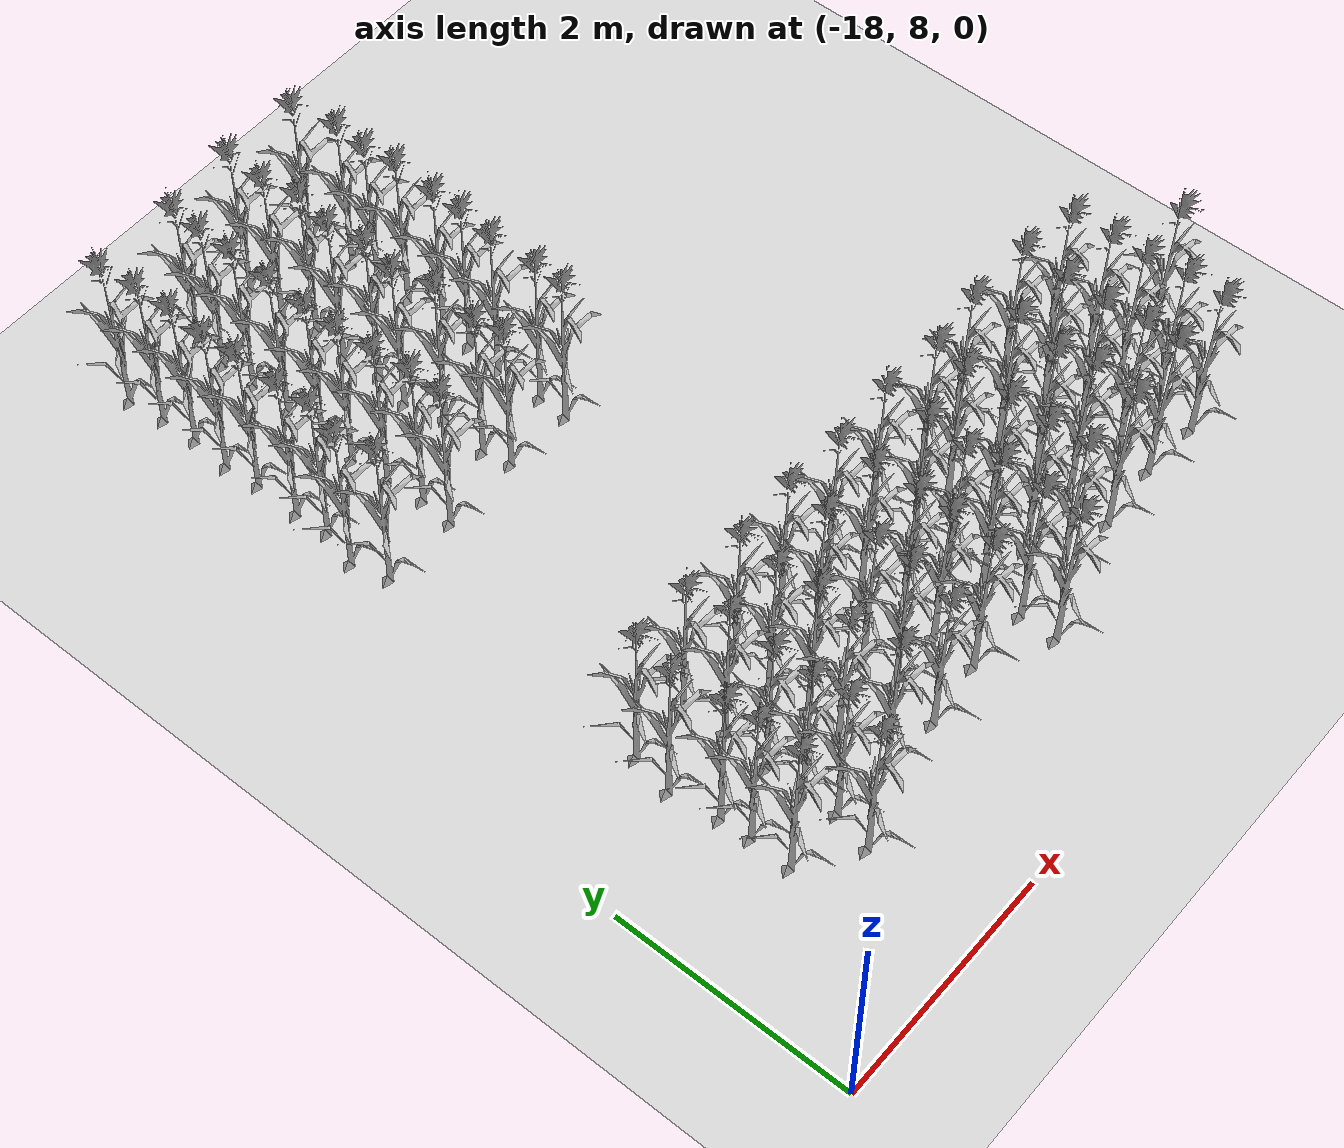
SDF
<sdf version="1.7">
 <world name="farmland_world">
  <model name="ground_plane">
   <static>1</static>
   <link name="link">
    <collision name="collision">
     <geometry><plane><normal>0 0 1</normal><size>40.0 40.0</size></plane></geometry>
     <surface><friction><ode><mu>100</mu><mu2>50</mu2></ode></friction></surface>
    </collision>
    <visual name="visual">
     <cast_shadows>0</cast_shadows>
     <geometry><plane><normal>0 0 1</normal><size>40.0 40.0</size></plane></geometry>
     <material>
      <script><uri>file://media/materials/scripts/gazebo.material</uri><name>Gazebo/Grey</name></script>
     </material>
    </visual>
   </link>
  </model>
  <model name="tree_3_3005">
   <static>1</static>
   <link name="link">
    <collision name="collision">
     <geometry><mesh><uri>model://Corn_low_poly/corn.obj</uri><scale>1 1 1</scale></mesh></geometry>
     <surface><friction><ode><mu>100</mu><mu2>50</mu2></ode></friction></surface>
    </collision>
    <visual name="visual">
     <geometry><mesh><uri>model://Corn_low_poly/corn.obj</uri><scale>1 1 1</scale></mesh></geometry>
    </visual>
   </link>
   <pose>-14.304050493680474 9.034644199201889 0 0 0 0</pose>
  </model>
  <model name="tree_3_3009">
   <static>1</static>
   <link name="link">
    <collision name="collision">
     <geometry><mesh><uri>model://Corn_low_poly/corn.obj</uri><scale>1 1 1</scale></mesh></geometry>
     <surface><friction><ode><mu>100</mu><mu2>50</mu2></ode></friction></surface>
    </collision>
    <visual name="visual">
     <geometry><mesh><uri>model://Corn_low_poly/corn.obj</uri><scale>1 1 1</scale></mesh></geometry>
    </visual>
   </link>
   <pose>-16.50939552484359 9.03031689410024 0 0 0 0</pose>
  </model>
  <model name="tree_3_3015">
   <static>1</static>
   <link name="link">
    <collision name="collision">
     <geometry><mesh><uri>model://Corn_low_poly/corn.obj</uri><scale>1 1 1</scale></mesh></geometry>
     <surface><friction><ode><mu>100</mu><mu2>50</mu2></ode></friction></surface>
    </collision>
    <visual name="visual">
     <geometry><mesh><uri>model://Corn_low_poly/corn.obj</uri><scale>1 1 1</scale></mesh></geometry>
    </visual>
   </link>
   <pose>-12.1350720539973 9.34724240780494 0 0 0 0</pose>
  </model>
  <model name="tree_3_3016">
   <static>1</static>
   <link name="link">
    <collision name="collision">
     <geometry><mesh><uri>model://Corn_low_poly/corn.obj</uri><scale>1 1 1</scale></mesh></geometry>
     <surface><friction><ode><mu>100</mu><mu2>50</mu2></ode></friction></surface>
    </collision>
    <visual name="visual">
     <geometry><mesh><uri>model://Corn_low_poly/corn.obj</uri><scale>1 1 1</scale></mesh></geometry>
    </visual>
   </link>
   <pose>-12.660126634453782 9.37355161236829 0 0 0 0</pose>
  </model>
  <model name="tree_3_3017">
   <static>1</static>
   <link name="link">
    <collision name="collision">
     <geometry><mesh><uri>model://Corn_low_poly/corn.obj</uri><scale>1 1 1</scale></mesh></geometry>
     <surface><friction><ode><mu>100</mu><mu2>50</mu2></ode></friction></surface>
    </collision>
    <visual name="visual">
     <geometry><mesh><uri>model://Corn_low_poly/corn.obj</uri><scale>1 1 1</scale></mesh></geometry>
    </visual>
   </link>
   <pose>-13.237657871818723 9.331266990681367 0 0 0 0</pose>
  </model>
  <model name="tree_3_3018">
   <static>1</static>
   <link name="link">
    <collision name="collision">
     <geometry><mesh><uri>model://Corn_low_poly/corn.obj</uri><scale>1 1 1</scale></mesh></geometry>
     <surface><friction><ode><mu>100</mu><mu2>50</mu2></ode></friction></surface>
    </collision>
    <visual name="visual">
     <geometry><mesh><uri>model://Corn_low_poly/corn.obj</uri><scale>1 1 1</scale></mesh></geometry>
    </visual>
   </link>
   <pose>-13.790917756503164 9.343913777360653 0 0 0 0</pose>
  </model>
  <model name="tree_3_3019">
   <static>1</static>
   <link name="link">
    <collision name="collision">
     <geometry><mesh><uri>model://Corn_low_poly/corn.obj</uri><scale>1 1 1</scale></mesh></geometry>
     <surface><friction><ode><mu>100</mu><mu2>50</mu2></ode></friction></surface>
    </collision>
    <visual name="visual">
     <geometry><mesh><uri>model://Corn_low_poly/corn.obj</uri><scale>1 1 1</scale></mesh></geometry>
    </visual>
   </link>
   <pose>-14.299267900255435 9.34825336593801 0 0 0 0</pose>
  </model>
  <model name="tree_3_3020">
   <static>1</static>
   <link name="link">
    <collision name="collision">
     <geometry><mesh><uri>model://Corn_low_poly/corn.obj</uri><scale>1 1 1</scale></mesh></geometry>
     <surface><friction><ode><mu>100</mu><mu2>50</mu2></ode></friction></surface>
    </collision>
    <visual name="visual">
     <geometry><mesh><uri>model://Corn_low_poly/corn.obj</uri><scale>1 1 1</scale></mesh></geometry>
    </visual>
   </link>
   <pose>-14.866783382349738 9.350993263379873 0 0 0 0</pose>
  </model>
  <model name="tree_3_3021">
   <static>1</static>
   <link name="link">
    <collision name="collision">
     <geometry><mesh><uri>model://Corn_low_poly/corn.obj</uri><scale>1 1 1</scale></mesh></geometry>
     <surface><friction><ode><mu>100</mu><mu2>50</mu2></ode></friction></surface>
    </collision>
    <visual name="visual">
     <geometry><mesh><uri>model://Corn_low_poly/corn.obj</uri><scale>1 1 1</scale></mesh></geometry>
    </visual>
   </link>
   <pose>-15.42359582105403 9.287411516574732 0 0 0 0</pose>
  </model>
  <model name="tree_3_3022">
   <static>1</static>
   <link name="link">
    <collision name="collision">
     <geometry><mesh><uri>model://Corn_low_poly/corn.obj</uri><scale>1 1 1</scale></mesh></geometry>
     <surface><friction><ode><mu>100</mu><mu2>50</mu2></ode></friction></surface>
    </collision>
    <visual name="visual">
     <geometry><mesh><uri>model://Corn_low_poly/corn.obj</uri><scale>1 1 1</scale></mesh></geometry>
    </visual>
   </link>
   <pose>-15.898134659931898 9.336251169596219 0 0 0 0</pose>
  </model>
  <model name="tree_3_3023">
   <static>1</static>
   <link name="link">
    <collision name="collision">
     <geometry><mesh><uri>model://Corn_low_poly/corn.obj</uri><scale>1 1 1</scale></mesh></geometry>
     <surface><friction><ode><mu>100</mu><mu2>50</mu2></ode></friction></surface>
    </collision>
    <visual name="visual">
     <geometry><mesh><uri>model://Corn_low_poly/corn.obj</uri><scale>1 1 1</scale></mesh></geometry>
    </visual>
   </link>
   <pose>-16.422605062357068 9.359245026394007 0 0 0 0</pose>
  </model>
  <model name="tree_3_3024">
   <static>1</static>
   <link name="link">
    <collision name="collision">
     <geometry><mesh><uri>model://Corn_low_poly/corn.obj</uri><scale>1 1 1</scale></mesh></geometry>
     <surface><friction><ode><mu>100</mu><mu2>50</mu2></ode></friction></surface>
    </collision>
    <visual name="visual">
     <geometry><mesh><uri>model://Corn_low_poly/corn.obj</uri><scale>1 1 1</scale></mesh></geometry>
    </visual>
   </link>
   <pose>-16.95719735746344 9.34425494797604 0 0 0 0</pose>
  </model>
  <model name="tree_3_3029">
   <static>1</static>
   <link name="link">
    <collision name="collision">
     <geometry><mesh><uri>model://Corn_low_poly/corn.obj</uri><scale>1 1 1</scale></mesh></geometry>
     <surface><friction><ode><mu>100</mu><mu2>50</mu2></ode></friction></surface>
    </collision>
    <visual name="visual">
     <geometry><mesh><uri>model://Corn_low_poly/corn.obj</uri><scale>1 1 1</scale></mesh></geometry>
    </visual>
   </link>
   <pose>-12.123028238819582 9.668042045353747 0 0 0 0</pose>
  </model>
  <model name="tree_3_3030">
   <static>1</static>
   <link name="link">
    <collision name="collision">
     <geometry><mesh><uri>model://Corn_low_poly/corn.obj</uri><scale>1 1 1</scale></mesh></geometry>
     <surface><friction><ode><mu>100</mu><mu2>50</mu2></ode></friction></surface>
    </collision>
    <visual name="visual">
     <geometry><mesh><uri>model://Corn_low_poly/corn.obj</uri><scale>1 1 1</scale></mesh></geometry>
    </visual>
   </link>
   <pose>-12.660855869004424 9.647503407549703 0 0 0 0</pose>
  </model>
  <model name="tree_3_3031">
   <static>1</static>
   <link name="link">
    <collision name="collision">
     <geometry><mesh><uri>model://Corn_low_poly/corn.obj</uri><scale>1 1 1</scale></mesh></geometry>
     <surface><friction><ode><mu>100</mu><mu2>50</mu2></ode></friction></surface>
    </collision>
    <visual name="visual">
     <geometry><mesh><uri>model://Corn_low_poly/corn.obj</uri><scale>1 1 1</scale></mesh></geometry>
    </visual>
   </link>
   <pose>-13.193045402946293 9.707677057529603 0 0 0 0</pose>
  </model>
  <model name="tree_3_3032">
   <static>1</static>
   <link name="link">
    <collision name="collision">
     <geometry><mesh><uri>model://Corn_low_poly/corn.obj</uri><scale>1 1 1</scale></mesh></geometry>
     <surface><friction><ode><mu>100</mu><mu2>50</mu2></ode></friction></surface>
    </collision>
    <visual name="visual">
     <geometry><mesh><uri>model://Corn_low_poly/corn.obj</uri><scale>1 1 1</scale></mesh></geometry>
    </visual>
   </link>
   <pose>-13.813220290381638 9.657514359618697 0 0 0 0</pose>
  </model>
  <model name="tree_3_3033">
   <static>1</static>
   <link name="link">
    <collision name="collision">
     <geometry><mesh><uri>model://Corn_low_poly/corn.obj</uri><scale>1 1 1</scale></mesh></geometry>
     <surface><friction><ode><mu>100</mu><mu2>50</mu2></ode></friction></surface>
    </collision>
    <visual name="visual">
     <geometry><mesh><uri>model://Corn_low_poly/corn.obj</uri><scale>1 1 1</scale></mesh></geometry>
    </visual>
   </link>
   <pose>-14.270808798184651 9.713904394381926 0 0 0 0</pose>
  </model>
  <model name="tree_3_3034">
   <static>1</static>
   <link name="link">
    <collision name="collision">
     <geometry><mesh><uri>model://Corn_low_poly/corn.obj</uri><scale>1 1 1</scale></mesh></geometry>
     <surface><friction><ode><mu>100</mu><mu2>50</mu2></ode></friction></surface>
    </collision>
    <visual name="visual">
     <geometry><mesh><uri>model://Corn_low_poly/corn.obj</uri><scale>1 1 1</scale></mesh></geometry>
    </visual>
   </link>
   <pose>-14.851528030930496 9.714702855875267 0 0 0 0</pose>
  </model>
  <model name="tree_3_3035">
   <static>1</static>
   <link name="link">
    <collision name="collision">
     <geometry><mesh><uri>model://Corn_low_poly/corn.obj</uri><scale>1 1 1</scale></mesh></geometry>
     <surface><friction><ode><mu>100</mu><mu2>50</mu2></ode></friction></surface>
    </collision>
    <visual name="visual">
     <geometry><mesh><uri>model://Corn_low_poly/corn.obj</uri><scale>1 1 1</scale></mesh></geometry>
    </visual>
   </link>
   <pose>-15.34319120196801 9.682055293058271 0 0 0 0</pose>
  </model>
  <model name="tree_3_3036">
   <static>1</static>
   <link name="link">
    <collision name="collision">
     <geometry><mesh><uri>model://Corn_low_poly/corn.obj</uri><scale>1 1 1</scale></mesh></geometry>
     <surface><friction><ode><mu>100</mu><mu2>50</mu2></ode></friction></surface>
    </collision>
    <visual name="visual">
     <geometry><mesh><uri>model://Corn_low_poly/corn.obj</uri><scale>1 1 1</scale></mesh></geometry>
    </visual>
   </link>
   <pose>-15.968832419298929 9.707728970667631 0 0 0 0</pose>
  </model>
  <model name="tree_3_3037">
   <static>1</static>
   <link name="link">
    <collision name="collision">
     <geometry><mesh><uri>model://Corn_low_poly/corn.obj</uri><scale>1 1 1</scale></mesh></geometry>
     <surface><friction><ode><mu>100</mu><mu2>50</mu2></ode></friction></surface>
    </collision>
    <visual name="visual">
     <geometry><mesh><uri>model://Corn_low_poly/corn.obj</uri><scale>1 1 1</scale></mesh></geometry>
    </visual>
   </link>
   <pose>-16.458751613484083 9.632388589800984 0 0 0 0</pose>
  </model>
  <model name="tree_3_3038">
   <static>1</static>
   <link name="link">
    <collision name="collision">
     <geometry><mesh><uri>model://Corn_low_poly/corn.obj</uri><scale>1 1 1</scale></mesh></geometry>
     <surface><friction><ode><mu>100</mu><mu2>50</mu2></ode></friction></surface>
    </collision>
    <visual name="visual">
     <geometry><mesh><uri>model://Corn_low_poly/corn.obj</uri><scale>1 1 1</scale></mesh></geometry>
    </visual>
   </link>
   <pose>-16.95047237747215 9.692692761744023 0 0 0 0</pose>
  </model>
  <model name="tree_3_3042">
   <static>1</static>
   <link name="link">
    <collision name="collision">
     <geometry><mesh><uri>model://Corn_low_poly/corn.obj</uri><scale>1 1 1</scale></mesh></geometry>
     <surface><friction><ode><mu>100</mu><mu2>50</mu2></ode></friction></surface>
    </collision>
    <visual name="visual">
     <geometry><mesh><uri>model://Corn_low_poly/corn.obj</uri><scale>1 1 1</scale></mesh></geometry>
    </visual>
   </link>
   <pose>-11.649477040589655 10.038814801293597 0 0 0 0</pose>
  </model>
  <model name="tree_3_3043">
   <static>1</static>
   <link name="link">
    <collision name="collision">
     <geometry><mesh><uri>model://Corn_low_poly/corn.obj</uri><scale>1 1 1</scale></mesh></geometry>
     <surface><friction><ode><mu>100</mu><mu2>50</mu2></ode></friction></surface>
    </collision>
    <visual name="visual">
     <geometry><mesh><uri>model://Corn_low_poly/corn.obj</uri><scale>1 1 1</scale></mesh></geometry>
    </visual>
   </link>
   <pose>-12.16772218098248 9.993113565932063 0 0 0 0</pose>
  </model>
  <model name="tree_3_3044">
   <static>1</static>
   <link name="link">
    <collision name="collision">
     <geometry><mesh><uri>model://Corn_low_poly/corn.obj</uri><scale>1 1 1</scale></mesh></geometry>
     <surface><friction><ode><mu>100</mu><mu2>50</mu2></ode></friction></surface>
    </collision>
    <visual name="visual">
     <geometry><mesh><uri>model://Corn_low_poly/corn.obj</uri><scale>1 1 1</scale></mesh></geometry>
    </visual>
   </link>
   <pose>-12.698183825745259 9.968575481910108 0 0 0 0</pose>
  </model>
  <model name="tree_3_3045">
   <static>1</static>
   <link name="link">
    <collision name="collision">
     <geometry><mesh><uri>model://Corn_low_poly/corn.obj</uri><scale>1 1 1</scale></mesh></geometry>
     <surface><friction><ode><mu>100</mu><mu2>50</mu2></ode></friction></surface>
    </collision>
    <visual name="visual">
     <geometry><mesh><uri>model://Corn_low_poly/corn.obj</uri><scale>1 1 1</scale></mesh></geometry>
    </visual>
   </link>
   <pose>-13.25752261478036 9.982749836032989 0 0 0 0</pose>
  </model>
  <model name="tree_3_3046">
   <static>1</static>
   <link name="link">
    <collision name="collision">
     <geometry><mesh><uri>model://Corn_low_poly/corn.obj</uri><scale>1 1 1</scale></mesh></geometry>
     <surface><friction><ode><mu>100</mu><mu2>50</mu2></ode></friction></surface>
    </collision>
    <visual name="visual">
     <geometry><mesh><uri>model://Corn_low_poly/corn.obj</uri><scale>1 1 1</scale></mesh></geometry>
    </visual>
   </link>
   <pose>-13.805625604934944 9.995265911929637 0 0 0 0</pose>
  </model>
  <model name="tree_3_3047">
   <static>1</static>
   <link name="link">
    <collision name="collision">
     <geometry><mesh><uri>model://Corn_low_poly/corn.obj</uri><scale>1 1 1</scale></mesh></geometry>
     <surface><friction><ode><mu>100</mu><mu2>50</mu2></ode></friction></surface>
    </collision>
    <visual name="visual">
     <geometry><mesh><uri>model://Corn_low_poly/corn.obj</uri><scale>1 1 1</scale></mesh></geometry>
    </visual>
   </link>
   <pose>-14.353984893696627 9.96159051807386 0 0 0 0</pose>
  </model>
  <model name="tree_3_3048">
   <static>1</static>
   <link name="link">
    <collision name="collision">
     <geometry><mesh><uri>model://Corn_low_poly/corn.obj</uri><scale>1 1 1</scale></mesh></geometry>
     <surface><friction><ode><mu>100</mu><mu2>50</mu2></ode></friction></surface>
    </collision>
    <visual name="visual">
     <geometry><mesh><uri>model://Corn_low_poly/corn.obj</uri><scale>1 1 1</scale></mesh></geometry>
    </visual>
   </link>
   <pose>-14.850007336042575 9.998578055659129 0 0 0 0</pose>
  </model>
  <model name="tree_3_3049">
   <static>1</static>
   <link name="link">
    <collision name="collision">
     <geometry><mesh><uri>model://Corn_low_poly/corn.obj</uri><scale>1 1 1</scale></mesh></geometry>
     <surface><friction><ode><mu>100</mu><mu2>50</mu2></ode></friction></surface>
    </collision>
    <visual name="visual">
     <geometry><mesh><uri>model://Corn_low_poly/corn.obj</uri><scale>1 1 1</scale></mesh></geometry>
    </visual>
   </link>
   <pose>-15.337723327042832 9.974360800785945 0 0 0 0</pose>
  </model>
  <model name="tree_3_3050">
   <static>1</static>
   <link name="link">
    <collision name="collision">
     <geometry><mesh><uri>model://Corn_low_poly/corn.obj</uri><scale>1 1 1</scale></mesh></geometry>
     <surface><friction><ode><mu>100</mu><mu2>50</mu2></ode></friction></surface>
    </collision>
    <visual name="visual">
     <geometry><mesh><uri>model://Corn_low_poly/corn.obj</uri><scale>1 1 1</scale></mesh></geometry>
    </visual>
   </link>
   <pose>-15.897187387107573 10.02588732143548 0 0 0 0</pose>
  </model>
  <model name="tree_3_3051">
   <static>1</static>
   <link name="link">
    <collision name="collision">
     <geometry><mesh><uri>model://Corn_low_poly/corn.obj</uri><scale>1 1 1</scale></mesh></geometry>
     <surface><friction><ode><mu>100</mu><mu2>50</mu2></ode></friction></surface>
    </collision>
    <visual name="visual">
     <geometry><mesh><uri>model://Corn_low_poly/corn.obj</uri><scale>1 1 1</scale></mesh></geometry>
    </visual>
   </link>
   <pose>-16.4527317127433 9.96029567798532 0 0 0 0</pose>
  </model>
  <model name="tree_3_3052">
   <static>1</static>
   <link name="link">
    <collision name="collision">
     <geometry><mesh><uri>model://Corn_low_poly/corn.obj</uri><scale>1 1 1</scale></mesh></geometry>
     <surface><friction><ode><mu>100</mu><mu2>50</mu2></ode></friction></surface>
    </collision>
    <visual name="visual">
     <geometry><mesh><uri>model://Corn_low_poly/corn.obj</uri><scale>1 1 1</scale></mesh></geometry>
    </visual>
   </link>
   <pose>-16.96499512150763 9.950028731918298 0 0 0 0</pose>
  </model>
  <model name="tree_3_3057">
   <static>1</static>
   <link name="link">
    <collision name="collision">
     <geometry><mesh><uri>model://Corn_low_poly/corn.obj</uri><scale>1 1 1</scale></mesh></geometry>
     <surface><friction><ode><mu>100</mu><mu2>50</mu2></ode></friction></surface>
    </collision>
    <visual name="visual">
     <geometry><mesh><uri>model://Corn_low_poly/corn.obj</uri><scale>1 1 1</scale></mesh></geometry>
    </visual>
   </link>
   <pose>-12.165190654932418 10.281346764786186 0 0 0 0</pose>
  </model>
  <model name="tree_3_3058">
   <static>1</static>
   <link name="link">
    <collision name="collision">
     <geometry><mesh><uri>model://Corn_low_poly/corn.obj</uri><scale>1 1 1</scale></mesh></geometry>
     <surface><friction><ode><mu>100</mu><mu2>50</mu2></ode></friction></surface>
    </collision>
    <visual name="visual">
     <geometry><mesh><uri>model://Corn_low_poly/corn.obj</uri><scale>1 1 1</scale></mesh></geometry>
    </visual>
   </link>
   <pose>-12.685260513043335 10.319735766471828 0 0 0 0</pose>
  </model>
  <model name="tree_3_3059">
   <static>1</static>
   <link name="link">
    <collision name="collision">
     <geometry><mesh><uri>model://Corn_low_poly/corn.obj</uri><scale>1 1 1</scale></mesh></geometry>
     <surface><friction><ode><mu>100</mu><mu2>50</mu2></ode></friction></surface>
    </collision>
    <visual name="visual">
     <geometry><mesh><uri>model://Corn_low_poly/corn.obj</uri><scale>1 1 1</scale></mesh></geometry>
    </visual>
   </link>
   <pose>-13.187976166664637 10.364882024457483 0 0 0 0</pose>
  </model>
  <model name="tree_3_3060">
   <static>1</static>
   <link name="link">
    <collision name="collision">
     <geometry><mesh><uri>model://Corn_low_poly/corn.obj</uri><scale>1 1 1</scale></mesh></geometry>
     <surface><friction><ode><mu>100</mu><mu2>50</mu2></ode></friction></surface>
    </collision>
    <visual name="visual">
     <geometry><mesh><uri>model://Corn_low_poly/corn.obj</uri><scale>1 1 1</scale></mesh></geometry>
    </visual>
   </link>
   <pose>-13.799730524795812 10.375697470610238 0 0 0 0</pose>
  </model>
  <model name="tree_3_3061">
   <static>1</static>
   <link name="link">
    <collision name="collision">
     <geometry><mesh><uri>model://Corn_low_poly/corn.obj</uri><scale>1 1 1</scale></mesh></geometry>
     <surface><friction><ode><mu>100</mu><mu2>50</mu2></ode></friction></surface>
    </collision>
    <visual name="visual">
     <geometry><mesh><uri>model://Corn_low_poly/corn.obj</uri><scale>1 1 1</scale></mesh></geometry>
    </visual>
   </link>
   <pose>-14.307288659036097 10.31284542778259 0 0 0 0</pose>
  </model>
  <model name="tree_3_3062">
   <static>1</static>
   <link name="link">
    <collision name="collision">
     <geometry><mesh><uri>model://Corn_low_poly/corn.obj</uri><scale>1 1 1</scale></mesh></geometry>
     <surface><friction><ode><mu>100</mu><mu2>50</mu2></ode></friction></surface>
    </collision>
    <visual name="visual">
     <geometry><mesh><uri>model://Corn_low_poly/corn.obj</uri><scale>1 1 1</scale></mesh></geometry>
    </visual>
   </link>
   <pose>-14.86479680656892 10.356948559416036 0 0 0 0</pose>
  </model>
  <model name="tree_3_3063">
   <static>1</static>
   <link name="link">
    <collision name="collision">
     <geometry><mesh><uri>model://Corn_low_poly/corn.obj</uri><scale>1 1 1</scale></mesh></geometry>
     <surface><friction><ode><mu>100</mu><mu2>50</mu2></ode></friction></surface>
    </collision>
    <visual name="visual">
     <geometry><mesh><uri>model://Corn_low_poly/corn.obj</uri><scale>1 1 1</scale></mesh></geometry>
    </visual>
   </link>
   <pose>-15.378059489680625 10.369842586194954 0 0 0 0</pose>
  </model>
  <model name="tree_3_3064">
   <static>1</static>
   <link name="link">
    <collision name="collision">
     <geometry><mesh><uri>model://Corn_low_poly/corn.obj</uri><scale>1 1 1</scale></mesh></geometry>
     <surface><friction><ode><mu>100</mu><mu2>50</mu2></ode></friction></surface>
    </collision>
    <visual name="visual">
     <geometry><mesh><uri>model://Corn_low_poly/corn.obj</uri><scale>1 1 1</scale></mesh></geometry>
    </visual>
   </link>
   <pose>-15.936708638348268 10.350580167747957 0 0 0 0</pose>
  </model>
  <model name="tree_3_3065">
   <static>1</static>
   <link name="link">
    <collision name="collision">
     <geometry><mesh><uri>model://Corn_low_poly/corn.obj</uri><scale>1 1 1</scale></mesh></geometry>
     <surface><friction><ode><mu>100</mu><mu2>50</mu2></ode></friction></surface>
    </collision>
    <visual name="visual">
     <geometry><mesh><uri>model://Corn_low_poly/corn.obj</uri><scale>1 1 1</scale></mesh></geometry>
    </visual>
   </link>
   <pose>-16.4188897337003 10.35730490313013 0 0 0 0</pose>
  </model>
  <model name="tree_3_3066">
   <static>1</static>
   <link name="link">
    <collision name="collision">
     <geometry><mesh><uri>model://Corn_low_poly/corn.obj</uri><scale>1 1 1</scale></mesh></geometry>
     <surface><friction><ode><mu>100</mu><mu2>50</mu2></ode></friction></surface>
    </collision>
    <visual name="visual">
     <geometry><mesh><uri>model://Corn_low_poly/corn.obj</uri><scale>1 1 1</scale></mesh></geometry>
    </visual>
   </link>
   <pose>-17.033679164600013 10.35782749290169 0 0 0 0</pose>
  </model>
  <model name="tree_3_3071">
   <static>1</static>
   <link name="link">
    <collision name="collision">
     <geometry><mesh><uri>model://Corn_low_poly/corn.obj</uri><scale>1 1 1</scale></mesh></geometry>
     <surface><friction><ode><mu>100</mu><mu2>50</mu2></ode></friction></surface>
    </collision>
    <visual name="visual">
     <geometry><mesh><uri>model://Corn_low_poly/corn.obj</uri><scale>1 1 1</scale></mesh></geometry>
    </visual>
   </link>
   <pose>-12.189870803952102 10.621987536879354 0 0 0 0</pose>
  </model>
  <model name="tree_3_3072">
   <static>1</static>
   <link name="link">
    <collision name="collision">
     <geometry><mesh><uri>model://Corn_low_poly/corn.obj</uri><scale>1 1 1</scale></mesh></geometry>
     <surface><friction><ode><mu>100</mu><mu2>50</mu2></ode></friction></surface>
    </collision>
    <visual name="visual">
     <geometry><mesh><uri>model://Corn_low_poly/corn.obj</uri><scale>1 1 1</scale></mesh></geometry>
    </visual>
   </link>
   <pose>-12.656350958844309 10.703678562105189 0 0 0 0</pose>
  </model>
  <model name="tree_3_3073">
   <static>1</static>
   <link name="link">
    <collision name="collision">
     <geometry><mesh><uri>model://Corn_low_poly/corn.obj</uri><scale>1 1 1</scale></mesh></geometry>
     <surface><friction><ode><mu>100</mu><mu2>50</mu2></ode></friction></surface>
    </collision>
    <visual name="visual">
     <geometry><mesh><uri>model://Corn_low_poly/corn.obj</uri><scale>1 1 1</scale></mesh></geometry>
    </visual>
   </link>
   <pose>-13.248053262983165 10.714566244933973 0 0 0 0</pose>
  </model>
  <model name="tree_3_3074">
   <static>1</static>
   <link name="link">
    <collision name="collision">
     <geometry><mesh><uri>model://Corn_low_poly/corn.obj</uri><scale>1 1 1</scale></mesh></geometry>
     <surface><friction><ode><mu>100</mu><mu2>50</mu2></ode></friction></surface>
    </collision>
    <visual name="visual">
     <geometry><mesh><uri>model://Corn_low_poly/corn.obj</uri><scale>1 1 1</scale></mesh></geometry>
    </visual>
   </link>
   <pose>-13.752510934923702 10.657512968466223 0 0 0 0</pose>
  </model>
  <model name="tree_3_3075">
   <static>1</static>
   <link name="link">
    <collision name="collision">
     <geometry><mesh><uri>model://Corn_low_poly/corn.obj</uri><scale>1 1 1</scale></mesh></geometry>
     <surface><friction><ode><mu>100</mu><mu2>50</mu2></ode></friction></surface>
    </collision>
    <visual name="visual">
     <geometry><mesh><uri>model://Corn_low_poly/corn.obj</uri><scale>1 1 1</scale></mesh></geometry>
    </visual>
   </link>
   <pose>-14.284454462982303 10.70036221440147 0 0 0 0</pose>
  </model>
  <model name="tree_3_3076">
   <static>1</static>
   <link name="link">
    <collision name="collision">
     <geometry><mesh><uri>model://Corn_low_poly/corn.obj</uri><scale>1 1 1</scale></mesh></geometry>
     <surface><friction><ode><mu>100</mu><mu2>50</mu2></ode></friction></surface>
    </collision>
    <visual name="visual">
     <geometry><mesh><uri>model://Corn_low_poly/corn.obj</uri><scale>1 1 1</scale></mesh></geometry>
    </visual>
   </link>
   <pose>-14.843950450033297 10.673459754484192 0 0 0 0</pose>
  </model>
  <model name="tree_3_3077">
   <static>1</static>
   <link name="link">
    <collision name="collision">
     <geometry><mesh><uri>model://Corn_low_poly/corn.obj</uri><scale>1 1 1</scale></mesh></geometry>
     <surface><friction><ode><mu>100</mu><mu2>50</mu2></ode></friction></surface>
    </collision>
    <visual name="visual">
     <geometry><mesh><uri>model://Corn_low_poly/corn.obj</uri><scale>1 1 1</scale></mesh></geometry>
    </visual>
   </link>
   <pose>-15.357253976621417 10.706700285329458 0 0 0 0</pose>
  </model>
  <model name="tree_3_3078">
   <static>1</static>
   <link name="link">
    <collision name="collision">
     <geometry><mesh><uri>model://Corn_low_poly/corn.obj</uri><scale>1 1 1</scale></mesh></geometry>
     <surface><friction><ode><mu>100</mu><mu2>50</mu2></ode></friction></surface>
    </collision>
    <visual name="visual">
     <geometry><mesh><uri>model://Corn_low_poly/corn.obj</uri><scale>1 1 1</scale></mesh></geometry>
    </visual>
   </link>
   <pose>-15.900536308893663 10.68848207382892 0 0 0 0</pose>
  </model>
  <model name="tree_3_3079">
   <static>1</static>
   <link name="link">
    <collision name="collision">
     <geometry><mesh><uri>model://Corn_low_poly/corn.obj</uri><scale>1 1 1</scale></mesh></geometry>
     <surface><friction><ode><mu>100</mu><mu2>50</mu2></ode></friction></surface>
    </collision>
    <visual name="visual">
     <geometry><mesh><uri>model://Corn_low_poly/corn.obj</uri><scale>1 1 1</scale></mesh></geometry>
    </visual>
   </link>
   <pose>-16.471336883364234 10.690967154739024 0 0 0 0</pose>
  </model>
  <model name="tree_3_3080">
   <static>1</static>
   <link name="link">
    <collision name="collision">
     <geometry><mesh><uri>model://Corn_low_poly/corn.obj</uri><scale>1 1 1</scale></mesh></geometry>
     <surface><friction><ode><mu>100</mu><mu2>50</mu2></ode></friction></surface>
    </collision>
    <visual name="visual">
     <geometry><mesh><uri>model://Corn_low_poly/corn.obj</uri><scale>1 1 1</scale></mesh></geometry>
    </visual>
   </link>
   <pose>-16.964139804019158 10.70446279022899 0 0 0 0</pose>
  </model>
  <model name="tree_3_3081">
   <static>1</static>
   <link name="link">
    <collision name="collision">
     <geometry><mesh><uri>model://Corn_low_poly/corn.obj</uri><scale>1 1 1</scale></mesh></geometry>
     <surface><friction><ode><mu>100</mu><mu2>50</mu2></ode></friction></surface>
    </collision>
    <visual name="visual">
     <geometry><mesh><uri>model://Corn_low_poly/corn.obj</uri><scale>1 1 1</scale></mesh></geometry>
    </visual>
   </link>
   <pose>-15.036368761033282 13.021514971390594 0 0 0 0</pose>
  </model>
  <model name="tree_3_3082">
   <static>1</static>
   <link name="link">
    <collision name="collision">
     <geometry><mesh><uri>model://Corn_low_poly/corn.obj</uri><scale>1 1 1</scale></mesh></geometry>
     <surface><friction><ode><mu>100</mu><mu2>50</mu2></ode></friction></surface>
    </collision>
    <visual name="visual">
     <geometry><mesh><uri>model://Corn_low_poly/corn.obj</uri><scale>1 1 1</scale></mesh></geometry>
    </visual>
   </link>
   <pose>-15.62340731457221 13.046882321371587 0 0 0 0</pose>
  </model>
  <model name="tree_3_3083">
   <static>1</static>
   <link name="link">
    <collision name="collision">
     <geometry><mesh><uri>model://Corn_low_poly/corn.obj</uri><scale>1 1 1</scale></mesh></geometry>
     <surface><friction><ode><mu>100</mu><mu2>50</mu2></ode></friction></surface>
    </collision>
    <visual name="visual">
     <geometry><mesh><uri>model://Corn_low_poly/corn.obj</uri><scale>1 1 1</scale></mesh></geometry>
    </visual>
   </link>
   <pose>-16.31117684117907 13.032003865657089 0 0 0 0</pose>
  </model>
  <model name="tree_3_3084">
   <static>1</static>
   <link name="link">
    <collision name="collision">
     <geometry><mesh><uri>model://Corn_low_poly/corn.obj</uri><scale>1 1 1</scale></mesh></geometry>
     <surface><friction><ode><mu>100</mu><mu2>50</mu2></ode></friction></surface>
    </collision>
    <visual name="visual">
     <geometry><mesh><uri>model://Corn_low_poly/corn.obj</uri><scale>1 1 1</scale></mesh></geometry>
    </visual>
   </link>
   <pose>-16.956300169668168 13.036891321996602 0 0 0 0</pose>
  </model>
  <model name="tree_3_3085">
   <static>1</static>
   <link name="link">
    <collision name="collision">
     <geometry><mesh><uri>model://Corn_low_poly/corn.obj</uri><scale>1 1 1</scale></mesh></geometry>
     <surface><friction><ode><mu>100</mu><mu2>50</mu2></ode></friction></surface>
    </collision>
    <visual name="visual">
     <geometry><mesh><uri>model://Corn_low_poly/corn.obj</uri><scale>1 1 1</scale></mesh></geometry>
    </visual>
   </link>
   <pose>-15.022630343488073 13.285338439580062 0 0 0 0</pose>
  </model>
  <model name="tree_3_3086">
   <static>1</static>
   <link name="link">
    <collision name="collision">
     <geometry><mesh><uri>model://Corn_low_poly/corn.obj</uri><scale>1 1 1</scale></mesh></geometry>
     <surface><friction><ode><mu>100</mu><mu2>50</mu2></ode></friction></surface>
    </collision>
    <visual name="visual">
     <geometry><mesh><uri>model://Corn_low_poly/corn.obj</uri><scale>1 1 1</scale></mesh></geometry>
    </visual>
   </link>
   <pose>-15.672813401219354 13.283811911441514 0 0 0 0</pose>
  </model>
  <model name="tree_3_3087">
   <static>1</static>
   <link name="link">
    <collision name="collision">
     <geometry><mesh><uri>model://Corn_low_poly/corn.obj</uri><scale>1 1 1</scale></mesh></geometry>
     <surface><friction><ode><mu>100</mu><mu2>50</mu2></ode></friction></surface>
    </collision>
    <visual name="visual">
     <geometry><mesh><uri>model://Corn_low_poly/corn.obj</uri><scale>1 1 1</scale></mesh></geometry>
    </visual>
   </link>
   <pose>-16.28613419986165 13.325851275533616 0 0 0 0</pose>
  </model>
  <model name="tree_3_3088">
   <static>1</static>
   <link name="link">
    <collision name="collision">
     <geometry><mesh><uri>model://Corn_low_poly/corn.obj</uri><scale>1 1 1</scale></mesh></geometry>
     <surface><friction><ode><mu>100</mu><mu2>50</mu2></ode></friction></surface>
    </collision>
    <visual name="visual">
     <geometry><mesh><uri>model://Corn_low_poly/corn.obj</uri><scale>1 1 1</scale></mesh></geometry>
    </visual>
   </link>
   <pose>-17.038127903374654 13.344545801902022 0 0 0 0</pose>
  </model>
  <model name="tree_3_3089">
   <static>1</static>
   <link name="link">
    <collision name="collision">
     <geometry><mesh><uri>model://Corn_low_poly/corn.obj</uri><scale>1 1 1</scale></mesh></geometry>
     <surface><friction><ode><mu>100</mu><mu2>50</mu2></ode></friction></surface>
    </collision>
    <visual name="visual">
     <geometry><mesh><uri>model://Corn_low_poly/corn.obj</uri><scale>1 1 1</scale></mesh></geometry>
    </visual>
   </link>
   <pose>-15.025013595208627 13.709371604057388 0 0 0 0</pose>
  </model>
  <model name="tree_3_3090">
   <static>1</static>
   <link name="link">
    <collision name="collision">
     <geometry><mesh><uri>model://Corn_low_poly/corn.obj</uri><scale>1 1 1</scale></mesh></geometry>
     <surface><friction><ode><mu>100</mu><mu2>50</mu2></ode></friction></surface>
    </collision>
    <visual name="visual">
     <geometry><mesh><uri>model://Corn_low_poly/corn.obj</uri><scale>1 1 1</scale></mesh></geometry>
    </visual>
   </link>
   <pose>-15.624071368500859 13.707901738804164 0 0 0 0</pose>
  </model>
  <model name="tree_3_3091">
   <static>1</static>
   <link name="link">
    <collision name="collision">
     <geometry><mesh><uri>model://Corn_low_poly/corn.obj</uri><scale>1 1 1</scale></mesh></geometry>
     <surface><friction><ode><mu>100</mu><mu2>50</mu2></ode></friction></surface>
    </collision>
    <visual name="visual">
     <geometry><mesh><uri>model://Corn_low_poly/corn.obj</uri><scale>1 1 1</scale></mesh></geometry>
    </visual>
   </link>
   <pose>-16.320958282670542 13.650819616824052 0 0 0 0</pose>
  </model>
  <model name="tree_3_3092">
   <static>1</static>
   <link name="link">
    <collision name="collision">
     <geometry><mesh><uri>model://Corn_low_poly/corn.obj</uri><scale>1 1 1</scale></mesh></geometry>
     <surface><friction><ode><mu>100</mu><mu2>50</mu2></ode></friction></surface>
    </collision>
    <visual name="visual">
     <geometry><mesh><uri>model://Corn_low_poly/corn.obj</uri><scale>1 1 1</scale></mesh></geometry>
    </visual>
   </link>
   <pose>-16.950300711938073 13.660927918123097 0 0 0 0</pose>
  </model>
  <model name="tree_3_3093">
   <static>1</static>
   <link name="link">
    <collision name="collision">
     <geometry><mesh><uri>model://Corn_low_poly/corn.obj</uri><scale>1 1 1</scale></mesh></geometry>
     <surface><friction><ode><mu>100</mu><mu2>50</mu2></ode></friction></surface>
    </collision>
    <visual name="visual">
     <geometry><mesh><uri>model://Corn_low_poly/corn.obj</uri><scale>1 1 1</scale></mesh></geometry>
    </visual>
   </link>
   <pose>-14.987634770711416 14.032460959861899 0 0 0 0</pose>
  </model>
  <model name="tree_3_3094">
   <static>1</static>
   <link name="link">
    <collision name="collision">
     <geometry><mesh><uri>model://Corn_low_poly/corn.obj</uri><scale>1 1 1</scale></mesh></geometry>
     <surface><friction><ode><mu>100</mu><mu2>50</mu2></ode></friction></surface>
    </collision>
    <visual name="visual">
     <geometry><mesh><uri>model://Corn_low_poly/corn.obj</uri><scale>1 1 1</scale></mesh></geometry>
    </visual>
   </link>
   <pose>-15.71328753866893 14.041064587514919 0 0 0 0</pose>
  </model>
  <model name="tree_3_3095">
   <static>1</static>
   <link name="link">
    <collision name="collision">
     <geometry><mesh><uri>model://Corn_low_poly/corn.obj</uri><scale>1 1 1</scale></mesh></geometry>
     <surface><friction><ode><mu>100</mu><mu2>50</mu2></ode></friction></surface>
    </collision>
    <visual name="visual">
     <geometry><mesh><uri>model://Corn_low_poly/corn.obj</uri><scale>1 1 1</scale></mesh></geometry>
    </visual>
   </link>
   <pose>-16.35032030989025 13.980803543496737 0 0 0 0</pose>
  </model>
  <model name="tree_3_3096">
   <static>1</static>
   <link name="link">
    <collision name="collision">
     <geometry><mesh><uri>model://Corn_low_poly/corn.obj</uri><scale>1 1 1</scale></mesh></geometry>
     <surface><friction><ode><mu>100</mu><mu2>50</mu2></ode></friction></surface>
    </collision>
    <visual name="visual">
     <geometry><mesh><uri>model://Corn_low_poly/corn.obj</uri><scale>1 1 1</scale></mesh></geometry>
    </visual>
   </link>
   <pose>-16.969432132320325 13.955051110884524 0 0 0 0</pose>
  </model>
  <model name="tree_3_3097">
   <static>1</static>
   <link name="link">
    <collision name="collision">
     <geometry><mesh><uri>model://Corn_low_poly/corn.obj</uri><scale>1 1 1</scale></mesh></geometry>
     <surface><friction><ode><mu>100</mu><mu2>50</mu2></ode></friction></surface>
    </collision>
    <visual name="visual">
     <geometry><mesh><uri>model://Corn_low_poly/corn.obj</uri><scale>1 1 1</scale></mesh></geometry>
    </visual>
   </link>
   <pose>-14.986483732529155 14.30215409042681 0 0 0 0</pose>
  </model>
  <model name="tree_3_3098">
   <static>1</static>
   <link name="link">
    <collision name="collision">
     <geometry><mesh><uri>model://Corn_low_poly/corn.obj</uri><scale>1 1 1</scale></mesh></geometry>
     <surface><friction><ode><mu>100</mu><mu2>50</mu2></ode></friction></surface>
    </collision>
    <visual name="visual">
     <geometry><mesh><uri>model://Corn_low_poly/corn.obj</uri><scale>1 1 1</scale></mesh></geometry>
    </visual>
   </link>
   <pose>-15.639850144879368 14.36694273967172 0 0 0 0</pose>
  </model>
  <model name="tree_3_3099">
   <static>1</static>
   <link name="link">
    <collision name="collision">
     <geometry><mesh><uri>model://Corn_low_poly/corn.obj</uri><scale>1 1 1</scale></mesh></geometry>
     <surface><friction><ode><mu>100</mu><mu2>50</mu2></ode></friction></surface>
    </collision>
    <visual name="visual">
     <geometry><mesh><uri>model://Corn_low_poly/corn.obj</uri><scale>1 1 1</scale></mesh></geometry>
    </visual>
   </link>
   <pose>-16.34704602779898 14.284315554421305 0 0 0 0</pose>
  </model>
  <model name="tree_3_3100">
   <static>1</static>
   <link name="link">
    <collision name="collision">
     <geometry><mesh><uri>model://Corn_low_poly/corn.obj</uri><scale>1 1 1</scale></mesh></geometry>
     <surface><friction><ode><mu>100</mu><mu2>50</mu2></ode></friction></surface>
    </collision>
    <visual name="visual">
     <geometry><mesh><uri>model://Corn_low_poly/corn.obj</uri><scale>1 1 1</scale></mesh></geometry>
    </visual>
   </link>
   <pose>-16.962915671518775 14.353801272079485 0 0 0 0</pose>
  </model>
  <model name="tree_3_3101">
   <static>1</static>
   <link name="link">
    <collision name="collision">
     <geometry><mesh><uri>model://Corn_low_poly/corn.obj</uri><scale>1 1 1</scale></mesh></geometry>
     <surface><friction><ode><mu>100</mu><mu2>50</mu2></ode></friction></surface>
    </collision>
    <visual name="visual">
     <geometry><mesh><uri>model://Corn_low_poly/corn.obj</uri><scale>1 1 1</scale></mesh></geometry>
    </visual>
   </link>
   <pose>-14.95199487299589 14.704237716836813 0 0 0 0</pose>
  </model>
  <model name="tree_3_3102">
   <static>1</static>
   <link name="link">
    <collision name="collision">
     <geometry><mesh><uri>model://Corn_low_poly/corn.obj</uri><scale>1 1 1</scale></mesh></geometry>
     <surface><friction><ode><mu>100</mu><mu2>50</mu2></ode></friction></surface>
    </collision>
    <visual name="visual">
     <geometry><mesh><uri>model://Corn_low_poly/corn.obj</uri><scale>1 1 1</scale></mesh></geometry>
    </visual>
   </link>
   <pose>-15.689686885018782 14.689590966791354 0 0 0 0</pose>
  </model>
  <model name="tree_3_3103">
   <static>1</static>
   <link name="link">
    <collision name="collision">
     <geometry><mesh><uri>model://Corn_low_poly/corn.obj</uri><scale>1 1 1</scale></mesh></geometry>
     <surface><friction><ode><mu>100</mu><mu2>50</mu2></ode></friction></surface>
    </collision>
    <visual name="visual">
     <geometry><mesh><uri>model://Corn_low_poly/corn.obj</uri><scale>1 1 1</scale></mesh></geometry>
    </visual>
   </link>
   <pose>-16.331531179458274 14.657797259832215 0 0 0 0</pose>
  </model>
  <model name="tree_3_3104">
   <static>1</static>
   <link name="link">
    <collision name="collision">
     <geometry><mesh><uri>model://Corn_low_poly/corn.obj</uri><scale>1 1 1</scale></mesh></geometry>
     <surface><friction><ode><mu>100</mu><mu2>50</mu2></ode></friction></surface>
    </collision>
    <visual name="visual">
     <geometry><mesh><uri>model://Corn_low_poly/corn.obj</uri><scale>1 1 1</scale></mesh></geometry>
    </visual>
   </link>
   <pose>-16.992680689440345 14.654658306380881 0 0 0 0</pose>
  </model>
  <model name="tree_3_3105">
   <static>1</static>
   <link name="link">
    <collision name="collision">
     <geometry><mesh><uri>model://Corn_low_poly/corn.obj</uri><scale>1 1 1</scale></mesh></geometry>
     <surface><friction><ode><mu>100</mu><mu2>50</mu2></ode></friction></surface>
    </collision>
    <visual name="visual">
     <geometry><mesh><uri>model://Corn_low_poly/corn.obj</uri><scale>1 1 1</scale></mesh></geometry>
    </visual>
   </link>
   <pose>-14.990794345517838 14.984242394003957 0 0 0 0</pose>
  </model>
  <model name="tree_3_3106">
   <static>1</static>
   <link name="link">
    <collision name="collision">
     <geometry><mesh><uri>model://Corn_low_poly/corn.obj</uri><scale>1 1 1</scale></mesh></geometry>
     <surface><friction><ode><mu>100</mu><mu2>50</mu2></ode></friction></surface>
    </collision>
    <visual name="visual">
     <geometry><mesh><uri>model://Corn_low_poly/corn.obj</uri><scale>1 1 1</scale></mesh></geometry>
    </visual>
   </link>
   <pose>-15.62550569799355 15.034584614455856 0 0 0 0</pose>
  </model>
  <model name="tree_3_3107">
   <static>1</static>
   <link name="link">
    <collision name="collision">
     <geometry><mesh><uri>model://Corn_low_poly/corn.obj</uri><scale>1 1 1</scale></mesh></geometry>
     <surface><friction><ode><mu>100</mu><mu2>50</mu2></ode></friction></surface>
    </collision>
    <visual name="visual">
     <geometry><mesh><uri>model://Corn_low_poly/corn.obj</uri><scale>1 1 1</scale></mesh></geometry>
    </visual>
   </link>
   <pose>-16.317096732814935 15.037842623415456 0 0 0 0</pose>
  </model>
  <model name="tree_3_3108">
   <static>1</static>
   <link name="link">
    <collision name="collision">
     <geometry><mesh><uri>model://Corn_low_poly/corn.obj</uri><scale>1 1 1</scale></mesh></geometry>
     <surface><friction><ode><mu>100</mu><mu2>50</mu2></ode></friction></surface>
    </collision>
    <visual name="visual">
     <geometry><mesh><uri>model://Corn_low_poly/corn.obj</uri><scale>1 1 1</scale></mesh></geometry>
    </visual>
   </link>
   <pose>-16.967564283918705 15.000832337188756 0 0 0 0</pose>
  </model>
  <model name="tree_3_3109">
   <static>1</static>
   <link name="link">
    <collision name="collision">
     <geometry><mesh><uri>model://Corn_low_poly/corn.obj</uri><scale>1 1 1</scale></mesh></geometry>
     <surface><friction><ode><mu>100</mu><mu2>50</mu2></ode></friction></surface>
    </collision>
    <visual name="visual">
     <geometry><mesh><uri>model://Corn_low_poly/corn.obj</uri><scale>1 1 1</scale></mesh></geometry>
    </visual>
   </link>
   <pose>-14.963952378145537 15.28283479028621 0 0 0 0</pose>
  </model>
  <model name="tree_3_3110">
   <static>1</static>
   <link name="link">
    <collision name="collision">
     <geometry><mesh><uri>model://Corn_low_poly/corn.obj</uri><scale>1 1 1</scale></mesh></geometry>
     <surface><friction><ode><mu>100</mu><mu2>50</mu2></ode></friction></surface>
    </collision>
    <visual name="visual">
     <geometry><mesh><uri>model://Corn_low_poly/corn.obj</uri><scale>1 1 1</scale></mesh></geometry>
    </visual>
   </link>
   <pose>-15.690268506081187 15.339341658631884 0 0 0 0</pose>
  </model>
  <model name="tree_3_3111">
   <static>1</static>
   <link name="link">
    <collision name="collision">
     <geometry><mesh><uri>model://Corn_low_poly/corn.obj</uri><scale>1 1 1</scale></mesh></geometry>
     <surface><friction><ode><mu>100</mu><mu2>50</mu2></ode></friction></surface>
    </collision>
    <visual name="visual">
     <geometry><mesh><uri>model://Corn_low_poly/corn.obj</uri><scale>1 1 1</scale></mesh></geometry>
    </visual>
   </link>
   <pose>-16.319421629567096 15.349547290923692 0 0 0 0</pose>
  </model>
  <model name="tree_3_3112">
   <static>1</static>
   <link name="link">
    <collision name="collision">
     <geometry><mesh><uri>model://Corn_low_poly/corn.obj</uri><scale>1 1 1</scale></mesh></geometry>
     <surface><friction><ode><mu>100</mu><mu2>50</mu2></ode></friction></surface>
    </collision>
    <visual name="visual">
     <geometry><mesh><uri>model://Corn_low_poly/corn.obj</uri><scale>1 1 1</scale></mesh></geometry>
    </visual>
   </link>
   <pose>-16.982483813040144 15.321864673873163 0 0 0 0</pose>
  </model>
  <model name="tree_3_3113">
   <static>1</static>
   <link name="link">
    <collision name="collision">
     <geometry><mesh><uri>model://Corn_low_poly/corn.obj</uri><scale>1 1 1</scale></mesh></geometry>
     <surface><friction><ode><mu>100</mu><mu2>50</mu2></ode></friction></surface>
    </collision>
    <visual name="visual">
     <geometry><mesh><uri>model://Corn_low_poly/corn.obj</uri><scale>1 1 1</scale></mesh></geometry>
    </visual>
   </link>
   <pose>-15.026544892703722 15.674509345045704 0 0 0 0</pose>
  </model>
  <model name="tree_3_3114">
   <static>1</static>
   <link name="link">
    <collision name="collision">
     <geometry><mesh><uri>model://Corn_low_poly/corn.obj</uri><scale>1 1 1</scale></mesh></geometry>
     <surface><friction><ode><mu>100</mu><mu2>50</mu2></ode></friction></surface>
    </collision>
    <visual name="visual">
     <geometry><mesh><uri>model://Corn_low_poly/corn.obj</uri><scale>1 1 1</scale></mesh></geometry>
    </visual>
   </link>
   <pose>-15.663228979330915 15.703906523802923 0 0 0 0</pose>
  </model>
  <model name="tree_3_3115">
   <static>1</static>
   <link name="link">
    <collision name="collision">
     <geometry><mesh><uri>model://Corn_low_poly/corn.obj</uri><scale>1 1 1</scale></mesh></geometry>
     <surface><friction><ode><mu>100</mu><mu2>50</mu2></ode></friction></surface>
    </collision>
    <visual name="visual">
     <geometry><mesh><uri>model://Corn_low_poly/corn.obj</uri><scale>1 1 1</scale></mesh></geometry>
    </visual>
   </link>
   <pose>-16.2983486846474 15.633735778992337 0 0 0 0</pose>
  </model>
  <model name="tree_3_3116">
   <static>1</static>
   <link name="link">
    <collision name="collision">
     <geometry><mesh><uri>model://Corn_low_poly/corn.obj</uri><scale>1 1 1</scale></mesh></geometry>
     <surface><friction><ode><mu>100</mu><mu2>50</mu2></ode></friction></surface>
    </collision>
    <visual name="visual">
     <geometry><mesh><uri>model://Corn_low_poly/corn.obj</uri><scale>1 1 1</scale></mesh></geometry>
    </visual>
   </link>
   <pose>-17.023368864169885 15.64169133777216 0 0 0 0</pose>
  </model>
 </world>
</sdf>
